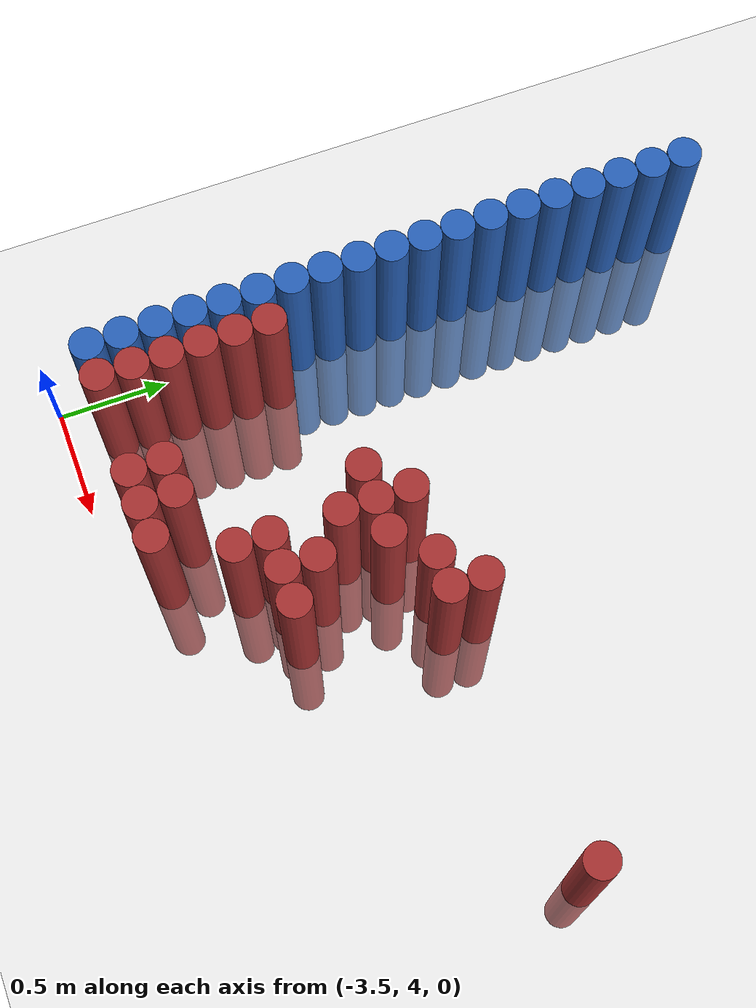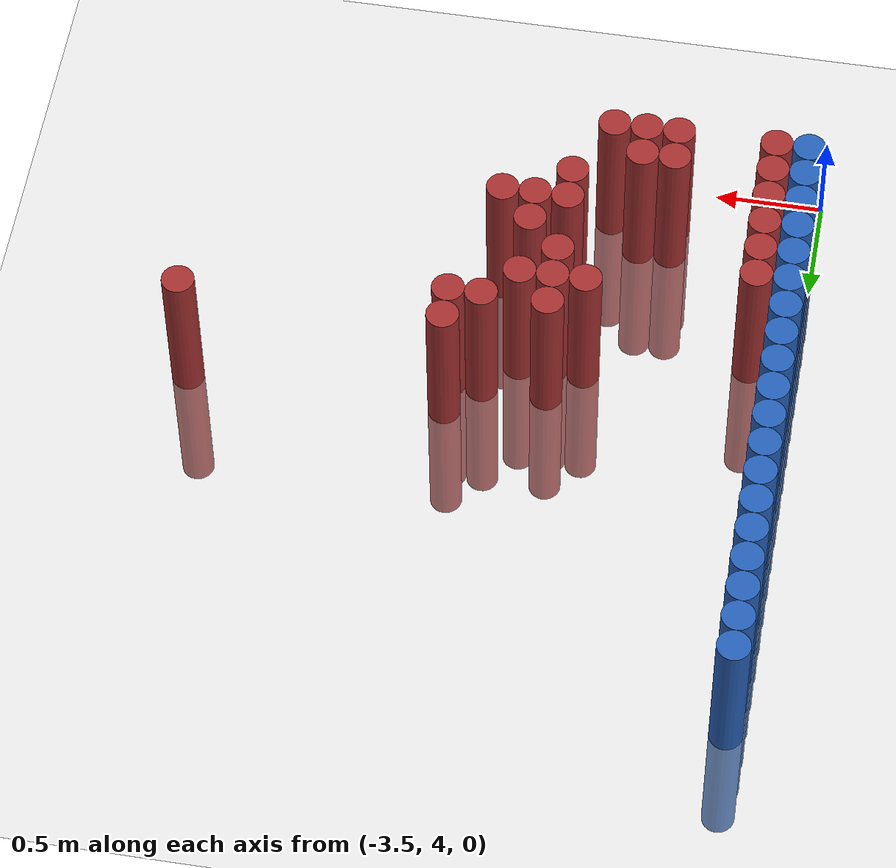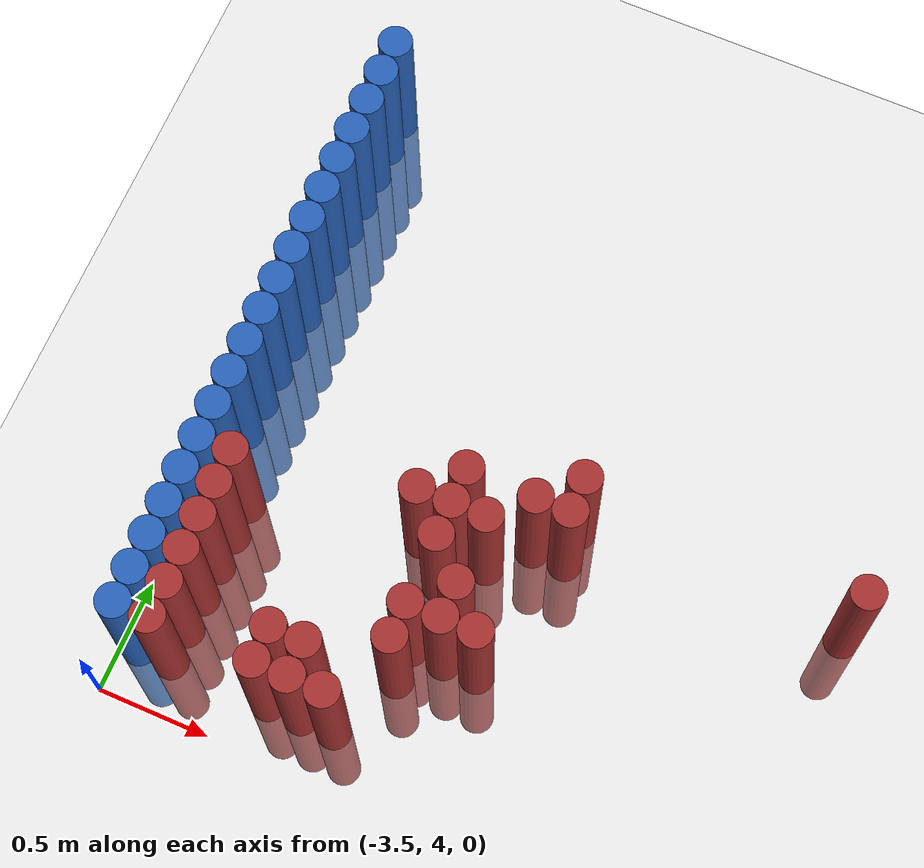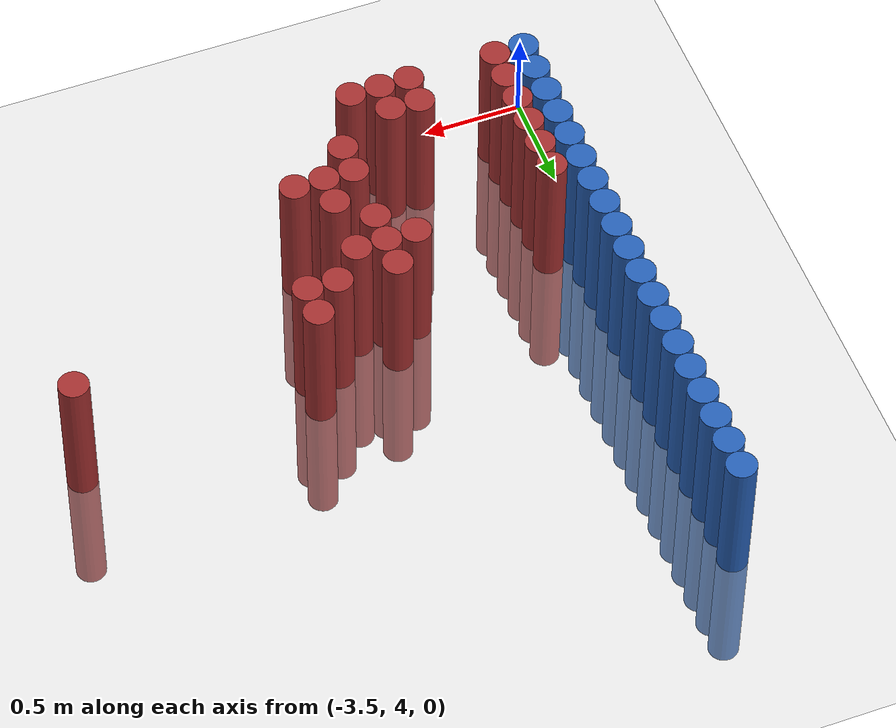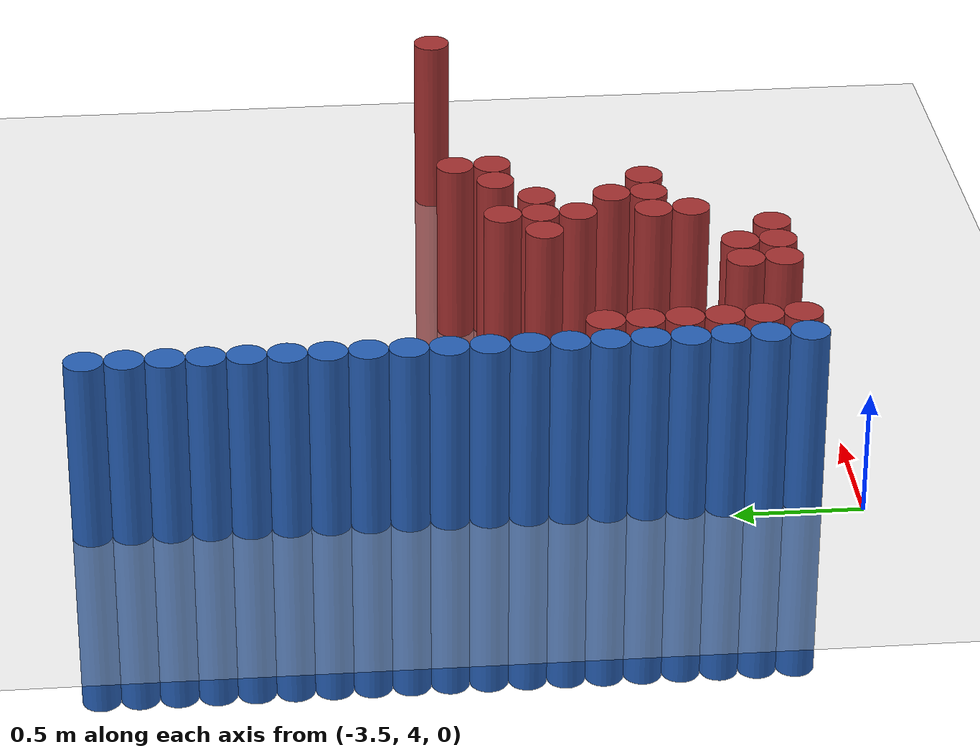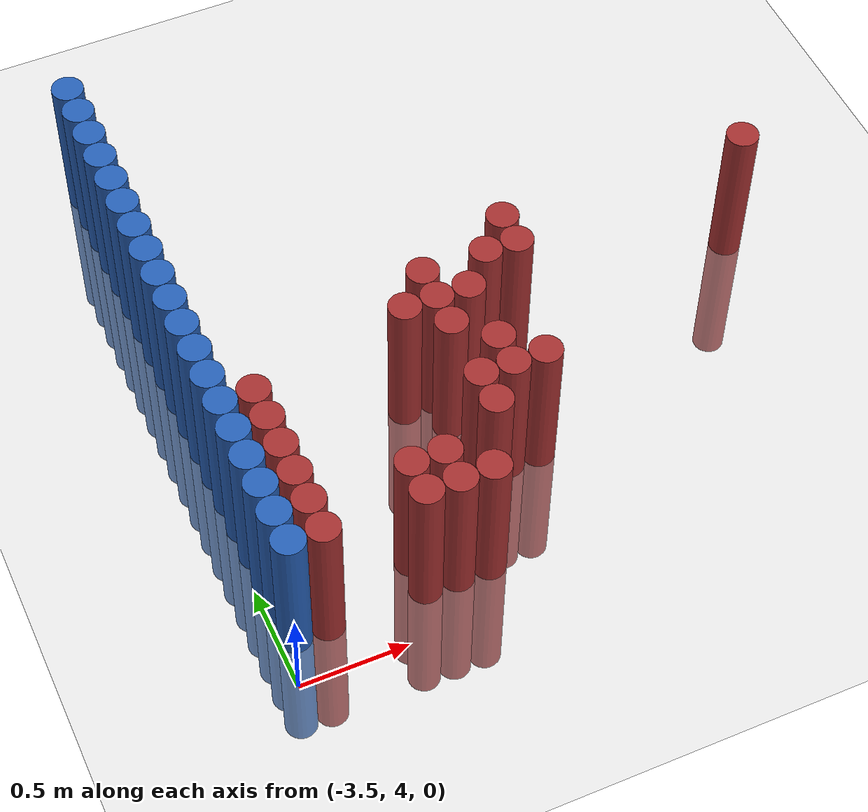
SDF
<sdf version="1.6">
 <world name="default">
  <model name="ground_plane">
   <static>1</static>
   <link name="link">
    <collision name="collision">
     <geometry><plane><normal>0 0 1</normal><size>100 100</size></plane></geometry>
     <surface><friction><ode><mu>100</mu><mu2>50</mu2></ode></friction></surface>
    </collision>
    <visual name="visual">
     <cast_shadows>0</cast_shadows>
     <geometry><plane><normal>0 0 1</normal><size>100 100</size></plane></geometry>
     <material>
      <script><uri>file://media/materials/scripts/gazebo.material</uri><name>Gazebo/Grey</name></script>
     </material>
    </visual>
   </link>
  </model>
  <model name="unit_cylinder_171">
   <static>1</static>
   <pose>-3.425000 4.225000 0.000000 0.000000 0.000000 0.000000</pose>
   <link name="link">
    <inertial>
     <mass>1</mass>
     <inertia><ixx>0.145833</ixx><ixy>0</ixy><ixz>0</ixz><iyy>0.145833</iyy><iyz>0</iyz><izz>0.125</izz></inertia>
    </inertial>
    <collision name="collision">
     <geometry><cylinder><radius>0.075000</radius><length>1.5</length></cylinder></geometry>
    </collision>
    <visual name="visual">
     <geometry><cylinder><radius>0.075000</radius><length>1.5</length></cylinder></geometry>
     <material>
      <ambient>0.152000 0.379000 0.720000 1</ambient>
      <diffuse>0.152000 0.379000 0.720000 1</diffuse>
     </material>
     <material>
      <script><name>Gazebo/Grey</name><uri>file://media/materials/scripts/gazebo.material</uri></script>
     </material>
    </visual>
   </link>
  </model>
  <model name="unit_cylinder_173">
   <static>1</static>
   <pose>-3.425000 4.375000 0.000000 0.000000 0.000000 0.000000</pose>
   <link name="link">
    <inertial>
     <mass>1</mass>
     <inertia><ixx>0.145833</ixx><ixy>0</ixy><ixz>0</ixz><iyy>0.145833</iyy><iyz>0</iyz><izz>0.125</izz></inertia>
    </inertial>
    <collision name="collision">
     <geometry><cylinder><radius>0.075000</radius><length>1.5</length></cylinder></geometry>
    </collision>
    <visual name="visual">
     <geometry><cylinder><radius>0.075000</radius><length>1.5</length></cylinder></geometry>
     <material>
      <ambient>0.152000 0.379000 0.720000 1</ambient>
      <diffuse>0.152000 0.379000 0.720000 1</diffuse>
     </material>
     <material>
      <script><name>Gazebo/Grey</name><uri>file://media/materials/scripts/gazebo.material</uri></script>
     </material>
    </visual>
   </link>
  </model>
  <model name="unit_cylinder_175">
   <static>1</static>
   <pose>-3.425000 4.525000 0.000000 0.000000 0.000000 0.000000</pose>
   <link name="link">
    <inertial>
     <mass>1</mass>
     <inertia><ixx>0.145833</ixx><ixy>0</ixy><ixz>0</ixz><iyy>0.145833</iyy><iyz>0</iyz><izz>0.125</izz></inertia>
    </inertial>
    <collision name="collision">
     <geometry><cylinder><radius>0.075000</radius><length>1.5</length></cylinder></geometry>
    </collision>
    <visual name="visual">
     <geometry><cylinder><radius>0.075000</radius><length>1.5</length></cylinder></geometry>
     <material>
      <ambient>0.152000 0.379000 0.720000 1</ambient>
      <diffuse>0.152000 0.379000 0.720000 1</diffuse>
     </material>
     <material>
      <script><name>Gazebo/Grey</name><uri>file://media/materials/scripts/gazebo.material</uri></script>
     </material>
    </visual>
   </link>
  </model>
  <model name="unit_cylinder_177">
   <static>1</static>
   <pose>-3.425000 4.675000 0.000000 0.000000 0.000000 0.000000</pose>
   <link name="link">
    <inertial>
     <mass>1</mass>
     <inertia><ixx>0.145833</ixx><ixy>0</ixy><ixz>0</ixz><iyy>0.145833</iyy><iyz>0</iyz><izz>0.125</izz></inertia>
    </inertial>
    <collision name="collision">
     <geometry><cylinder><radius>0.075000</radius><length>1.5</length></cylinder></geometry>
    </collision>
    <visual name="visual">
     <geometry><cylinder><radius>0.075000</radius><length>1.5</length></cylinder></geometry>
     <material>
      <ambient>0.152000 0.379000 0.720000 1</ambient>
      <diffuse>0.152000 0.379000 0.720000 1</diffuse>
     </material>
     <material>
      <script><name>Gazebo/Grey</name><uri>file://media/materials/scripts/gazebo.material</uri></script>
     </material>
    </visual>
   </link>
  </model>
  <model name="unit_cylinder_179">
   <static>1</static>
   <pose>-3.425000 4.825000 0.000000 0.000000 0.000000 0.000000</pose>
   <link name="link">
    <inertial>
     <mass>1</mass>
     <inertia><ixx>0.145833</ixx><ixy>0</ixy><ixz>0</ixz><iyy>0.145833</iyy><iyz>0</iyz><izz>0.125</izz></inertia>
    </inertial>
    <collision name="collision">
     <geometry><cylinder><radius>0.075000</radius><length>1.5</length></cylinder></geometry>
    </collision>
    <visual name="visual">
     <geometry><cylinder><radius>0.075000</radius><length>1.5</length></cylinder></geometry>
     <material>
      <ambient>0.152000 0.379000 0.720000 1</ambient>
      <diffuse>0.152000 0.379000 0.720000 1</diffuse>
     </material>
     <material>
      <script><name>Gazebo/Grey</name><uri>file://media/materials/scripts/gazebo.material</uri></script>
     </material>
    </visual>
   </link>
  </model>
  <model name="unit_cylinder_181">
   <static>1</static>
   <pose>-3.425000 4.975000 0.000000 0.000000 0.000000 0.000000</pose>
   <link name="link">
    <inertial>
     <mass>1</mass>
     <inertia><ixx>0.145833</ixx><ixy>0</ixy><ixz>0</ixz><iyy>0.145833</iyy><iyz>0</iyz><izz>0.125</izz></inertia>
    </inertial>
    <collision name="collision">
     <geometry><cylinder><radius>0.075000</radius><length>1.5</length></cylinder></geometry>
    </collision>
    <visual name="visual">
     <geometry><cylinder><radius>0.075000</radius><length>1.5</length></cylinder></geometry>
     <material>
      <ambient>0.152000 0.379000 0.720000 1</ambient>
      <diffuse>0.152000 0.379000 0.720000 1</diffuse>
     </material>
     <material>
      <script><name>Gazebo/Grey</name><uri>file://media/materials/scripts/gazebo.material</uri></script>
     </material>
    </visual>
   </link>
  </model>
  <model name="unit_cylinder_183">
   <static>1</static>
   <pose>-3.425000 5.125000 0.000000 0.000000 0.000000 0.000000</pose>
   <link name="link">
    <inertial>
     <mass>1</mass>
     <inertia><ixx>0.145833</ixx><ixy>0</ixy><ixz>0</ixz><iyy>0.145833</iyy><iyz>0</iyz><izz>0.125</izz></inertia>
    </inertial>
    <collision name="collision">
     <geometry><cylinder><radius>0.075000</radius><length>1.5</length></cylinder></geometry>
    </collision>
    <visual name="visual">
     <geometry><cylinder><radius>0.075000</radius><length>1.5</length></cylinder></geometry>
     <material>
      <ambient>0.152000 0.379000 0.720000 1</ambient>
      <diffuse>0.152000 0.379000 0.720000 1</diffuse>
     </material>
     <material>
      <script><name>Gazebo/Grey</name><uri>file://media/materials/scripts/gazebo.material</uri></script>
     </material>
    </visual>
   </link>
  </model>
  <model name="unit_cylinder_185">
   <static>1</static>
   <pose>-3.425000 5.275000 0.000000 0.000000 0.000000 0.000000</pose>
   <link name="link">
    <inertial>
     <mass>1</mass>
     <inertia><ixx>0.145833</ixx><ixy>0</ixy><ixz>0</ixz><iyy>0.145833</iyy><iyz>0</iyz><izz>0.125</izz></inertia>
    </inertial>
    <collision name="collision">
     <geometry><cylinder><radius>0.075000</radius><length>1.5</length></cylinder></geometry>
    </collision>
    <visual name="visual">
     <geometry><cylinder><radius>0.075000</radius><length>1.5</length></cylinder></geometry>
     <material>
      <ambient>0.152000 0.379000 0.720000 1</ambient>
      <diffuse>0.152000 0.379000 0.720000 1</diffuse>
     </material>
     <material>
      <script><name>Gazebo/Grey</name><uri>file://media/materials/scripts/gazebo.material</uri></script>
     </material>
    </visual>
   </link>
  </model>
  <model name="unit_cylinder_187">
   <static>1</static>
   <pose>-3.425000 5.425000 0.000000 0.000000 0.000000 0.000000</pose>
   <link name="link">
    <inertial>
     <mass>1</mass>
     <inertia><ixx>0.145833</ixx><ixy>0</ixy><ixz>0</ixz><iyy>0.145833</iyy><iyz>0</iyz><izz>0.125</izz></inertia>
    </inertial>
    <collision name="collision">
     <geometry><cylinder><radius>0.075000</radius><length>1.5</length></cylinder></geometry>
    </collision>
    <visual name="visual">
     <geometry><cylinder><radius>0.075000</radius><length>1.5</length></cylinder></geometry>
     <material>
      <ambient>0.152000 0.379000 0.720000 1</ambient>
      <diffuse>0.152000 0.379000 0.720000 1</diffuse>
     </material>
     <material>
      <script><name>Gazebo/Grey</name><uri>file://media/materials/scripts/gazebo.material</uri></script>
     </material>
    </visual>
   </link>
  </model>
  <model name="unit_cylinder_189">
   <static>1</static>
   <pose>-3.425000 5.575000 0.000000 0.000000 0.000000 0.000000</pose>
   <link name="link">
    <inertial>
     <mass>1</mass>
     <inertia><ixx>0.145833</ixx><ixy>0</ixy><ixz>0</ixz><iyy>0.145833</iyy><iyz>0</iyz><izz>0.125</izz></inertia>
    </inertial>
    <collision name="collision">
     <geometry><cylinder><radius>0.075000</radius><length>1.5</length></cylinder></geometry>
    </collision>
    <visual name="visual">
     <geometry><cylinder><radius>0.075000</radius><length>1.5</length></cylinder></geometry>
     <material>
      <ambient>0.152000 0.379000 0.720000 1</ambient>
      <diffuse>0.152000 0.379000 0.720000 1</diffuse>
     </material>
     <material>
      <script><name>Gazebo/Grey</name><uri>file://media/materials/scripts/gazebo.material</uri></script>
     </material>
    </visual>
   </link>
  </model>
  <model name="unit_cylinder_191">
   <static>1</static>
   <pose>-3.425000 5.725000 0.000000 0.000000 0.000000 0.000000</pose>
   <link name="link">
    <inertial>
     <mass>1</mass>
     <inertia><ixx>0.145833</ixx><ixy>0</ixy><ixz>0</ixz><iyy>0.145833</iyy><iyz>0</iyz><izz>0.125</izz></inertia>
    </inertial>
    <collision name="collision">
     <geometry><cylinder><radius>0.075000</radius><length>1.5</length></cylinder></geometry>
    </collision>
    <visual name="visual">
     <geometry><cylinder><radius>0.075000</radius><length>1.5</length></cylinder></geometry>
     <material>
      <ambient>0.152000 0.379000 0.720000 1</ambient>
      <diffuse>0.152000 0.379000 0.720000 1</diffuse>
     </material>
     <material>
      <script><name>Gazebo/Grey</name><uri>file://media/materials/scripts/gazebo.material</uri></script>
     </material>
    </visual>
   </link>
  </model>
  <model name="unit_cylinder_193">
   <static>1</static>
   <pose>-3.425000 5.875000 0.000000 0.000000 0.000000 0.000000</pose>
   <link name="link">
    <inertial>
     <mass>1</mass>
     <inertia><ixx>0.145833</ixx><ixy>0</ixy><ixz>0</ixz><iyy>0.145833</iyy><iyz>0</iyz><izz>0.125</izz></inertia>
    </inertial>
    <collision name="collision">
     <geometry><cylinder><radius>0.075000</radius><length>1.5</length></cylinder></geometry>
    </collision>
    <visual name="visual">
     <geometry><cylinder><radius>0.075000</radius><length>1.5</length></cylinder></geometry>
     <material>
      <ambient>0.152000 0.379000 0.720000 1</ambient>
      <diffuse>0.152000 0.379000 0.720000 1</diffuse>
     </material>
     <material>
      <script><name>Gazebo/Grey</name><uri>file://media/materials/scripts/gazebo.material</uri></script>
     </material>
    </visual>
   </link>
  </model>
  <model name="unit_cylinder_195">
   <static>1</static>
   <pose>-3.425000 6.025000 0.000000 0.000000 0.000000 0.000000</pose>
   <link name="link">
    <inertial>
     <mass>1</mass>
     <inertia><ixx>0.145833</ixx><ixy>0</ixy><ixz>0</ixz><iyy>0.145833</iyy><iyz>0</iyz><izz>0.125</izz></inertia>
    </inertial>
    <collision name="collision">
     <geometry><cylinder><radius>0.075000</radius><length>1.5</length></cylinder></geometry>
    </collision>
    <visual name="visual">
     <geometry><cylinder><radius>0.075000</radius><length>1.5</length></cylinder></geometry>
     <material>
      <ambient>0.152000 0.379000 0.720000 1</ambient>
      <diffuse>0.152000 0.379000 0.720000 1</diffuse>
     </material>
     <material>
      <script><name>Gazebo/Grey</name><uri>file://media/materials/scripts/gazebo.material</uri></script>
     </material>
    </visual>
   </link>
  </model>
  <model name="unit_cylinder_197">
   <static>1</static>
   <pose>-3.425000 6.175000 0.000000 0.000000 0.000000 0.000000</pose>
   <link name="link">
    <inertial>
     <mass>1</mass>
     <inertia><ixx>0.145833</ixx><ixy>0</ixy><ixz>0</ixz><iyy>0.145833</iyy><iyz>0</iyz><izz>0.125</izz></inertia>
    </inertial>
    <collision name="collision">
     <geometry><cylinder><radius>0.075000</radius><length>1.5</length></cylinder></geometry>
    </collision>
    <visual name="visual">
     <geometry><cylinder><radius>0.075000</radius><length>1.5</length></cylinder></geometry>
     <material>
      <ambient>0.152000 0.379000 0.720000 1</ambient>
      <diffuse>0.152000 0.379000 0.720000 1</diffuse>
     </material>
     <material>
      <script><name>Gazebo/Grey</name><uri>file://media/materials/scripts/gazebo.material</uri></script>
     </material>
    </visual>
   </link>
  </model>
  <model name="unit_cylinder_199">
   <static>1</static>
   <pose>-3.425000 6.325000 0.000000 0.000000 0.000000 0.000000</pose>
   <link name="link">
    <inertial>
     <mass>1</mass>
     <inertia><ixx>0.145833</ixx><ixy>0</ixy><ixz>0</ixz><iyy>0.145833</iyy><iyz>0</iyz><izz>0.125</izz></inertia>
    </inertial>
    <collision name="collision">
     <geometry><cylinder><radius>0.075000</radius><length>1.5</length></cylinder></geometry>
    </collision>
    <visual name="visual">
     <geometry><cylinder><radius>0.075000</radius><length>1.5</length></cylinder></geometry>
     <material>
      <ambient>0.152000 0.379000 0.720000 1</ambient>
      <diffuse>0.152000 0.379000 0.720000 1</diffuse>
     </material>
     <material>
      <script><name>Gazebo/Grey</name><uri>file://media/materials/scripts/gazebo.material</uri></script>
     </material>
    </visual>
   </link>
  </model>
  <model name="unit_cylinder_201">
   <static>1</static>
   <pose>-3.425000 6.475000 0.000000 0.000000 0.000000 0.000000</pose>
   <link name="link">
    <inertial>
     <mass>1</mass>
     <inertia><ixx>0.145833</ixx><ixy>0</ixy><ixz>0</ixz><iyy>0.145833</iyy><iyz>0</iyz><izz>0.125</izz></inertia>
    </inertial>
    <collision name="collision">
     <geometry><cylinder><radius>0.075000</radius><length>1.5</length></cylinder></geometry>
    </collision>
    <visual name="visual">
     <geometry><cylinder><radius>0.075000</radius><length>1.5</length></cylinder></geometry>
     <material>
      <ambient>0.152000 0.379000 0.720000 1</ambient>
      <diffuse>0.152000 0.379000 0.720000 1</diffuse>
     </material>
     <material>
      <script><name>Gazebo/Grey</name><uri>file://media/materials/scripts/gazebo.material</uri></script>
     </material>
    </visual>
   </link>
  </model>
  <model name="unit_cylinder_203">
   <static>1</static>
   <pose>-3.425000 6.625000 0.000000 0.000000 0.000000 0.000000</pose>
   <link name="link">
    <inertial>
     <mass>1</mass>
     <inertia><ixx>0.145833</ixx><ixy>0</ixy><ixz>0</ixz><iyy>0.145833</iyy><iyz>0</iyz><izz>0.125</izz></inertia>
    </inertial>
    <collision name="collision">
     <geometry><cylinder><radius>0.075000</radius><length>1.5</length></cylinder></geometry>
    </collision>
    <visual name="visual">
     <geometry><cylinder><radius>0.075000</radius><length>1.5</length></cylinder></geometry>
     <material>
      <ambient>0.152000 0.379000 0.720000 1</ambient>
      <diffuse>0.152000 0.379000 0.720000 1</diffuse>
     </material>
     <material>
      <script><name>Gazebo/Grey</name><uri>file://media/materials/scripts/gazebo.material</uri></script>
     </material>
    </visual>
   </link>
  </model>
  <model name="unit_cylinder_205">
   <static>1</static>
   <pose>-3.425000 6.775000 0.000000 0.000000 0.000000 0.000000</pose>
   <link name="link">
    <inertial>
     <mass>1</mass>
     <inertia><ixx>0.145833</ixx><ixy>0</ixy><ixz>0</ixz><iyy>0.145833</iyy><iyz>0</iyz><izz>0.125</izz></inertia>
    </inertial>
    <collision name="collision">
     <geometry><cylinder><radius>0.075000</radius><length>1.5</length></cylinder></geometry>
    </collision>
    <visual name="visual">
     <geometry><cylinder><radius>0.075000</radius><length>1.5</length></cylinder></geometry>
     <material>
      <ambient>0.152000 0.379000 0.720000 1</ambient>
      <diffuse>0.152000 0.379000 0.720000 1</diffuse>
     </material>
     <material>
      <script><name>Gazebo/Grey</name><uri>file://media/materials/scripts/gazebo.material</uri></script>
     </material>
    </visual>
   </link>
  </model>
  <model name="unit_cylinder_207">
   <static>1</static>
   <pose>-3.425000 6.925000 0.000000 0.000000 0.000000 0.000000</pose>
   <link name="link">
    <inertial>
     <mass>1</mass>
     <inertia><ixx>0.145833</ixx><ixy>0</ixy><ixz>0</ixz><iyy>0.145833</iyy><iyz>0</iyz><izz>0.125</izz></inertia>
    </inertial>
    <collision name="collision">
     <geometry><cylinder><radius>0.075000</radius><length>1.5</length></cylinder></geometry>
    </collision>
    <visual name="visual">
     <geometry><cylinder><radius>0.075000</radius><length>1.5</length></cylinder></geometry>
     <material>
      <ambient>0.152000 0.379000 0.720000 1</ambient>
      <diffuse>0.152000 0.379000 0.720000 1</diffuse>
     </material>
     <material>
      <script><name>Gazebo/Grey</name><uri>file://media/materials/scripts/gazebo.material</uri></script>
     </material>
    </visual>
   </link>
  </model>
  <model name="unit_cylinder_249">
   <static>1</static>
   <pose>-3.425000 4.225000 0.000000 0.000000 0.000000 0.000000</pose>
   <link name="link">
    <inertial>
     <mass>1</mass>
     <inertia><ixx>0.145833</ixx><ixy>0</ixy><ixz>0</ixz><iyy>0.145833</iyy><iyz>0</iyz><izz>0.125</izz></inertia>
    </inertial>
    <collision name="collision">
     <geometry><cylinder><radius>0.075000</radius><length>1.5</length></cylinder></geometry>
    </collision>
    <visual name="visual">
     <geometry><cylinder><radius>0.075000</radius><length>1.5</length></cylinder></geometry>
     <material>
      <ambient>0.152000 0.379000 0.720000 1</ambient>
      <diffuse>0.152000 0.379000 0.720000 1</diffuse>
     </material>
     <material>
      <script><name>Gazebo/Grey</name><uri>file://media/materials/scripts/gazebo.material</uri></script>
     </material>
    </visual>
   </link>
  </model>
  <model name="unit_cylinder_250">
   <static>1</static>
   <pose>-3.425000 4.375000 0.000000 0.000000 0.000000 0.000000</pose>
   <link name="link">
    <inertial>
     <mass>1</mass>
     <inertia><ixx>0.145833</ixx><ixy>0</ixy><ixz>0</ixz><iyy>0.145833</iyy><iyz>0</iyz><izz>0.125</izz></inertia>
    </inertial>
    <collision name="collision">
     <geometry><cylinder><radius>0.075000</radius><length>1.5</length></cylinder></geometry>
    </collision>
    <visual name="visual">
     <geometry><cylinder><radius>0.075000</radius><length>1.5</length></cylinder></geometry>
     <material>
      <ambient>0.152000 0.379000 0.720000 1</ambient>
      <diffuse>0.152000 0.379000 0.720000 1</diffuse>
     </material>
     <material>
      <script><name>Gazebo/Grey</name><uri>file://media/materials/scripts/gazebo.material</uri></script>
     </material>
    </visual>
   </link>
  </model>
  <model name="unit_cylinder_251">
   <static>1</static>
   <pose>-3.425000 4.525000 0.000000 0.000000 0.000000 0.000000</pose>
   <link name="link">
    <inertial>
     <mass>1</mass>
     <inertia><ixx>0.145833</ixx><ixy>0</ixy><ixz>0</ixz><iyy>0.145833</iyy><iyz>0</iyz><izz>0.125</izz></inertia>
    </inertial>
    <collision name="collision">
     <geometry><cylinder><radius>0.075000</radius><length>1.5</length></cylinder></geometry>
    </collision>
    <visual name="visual">
     <geometry><cylinder><radius>0.075000</radius><length>1.5</length></cylinder></geometry>
     <material>
      <ambient>0.152000 0.379000 0.720000 1</ambient>
      <diffuse>0.152000 0.379000 0.720000 1</diffuse>
     </material>
     <material>
      <script><name>Gazebo/Grey</name><uri>file://media/materials/scripts/gazebo.material</uri></script>
     </material>
    </visual>
   </link>
  </model>
  <model name="unit_cylinder_252">
   <static>1</static>
   <pose>-3.425000 4.675000 0.000000 0.000000 0.000000 0.000000</pose>
   <link name="link">
    <inertial>
     <mass>1</mass>
     <inertia><ixx>0.145833</ixx><ixy>0</ixy><ixz>0</ixz><iyy>0.145833</iyy><iyz>0</iyz><izz>0.125</izz></inertia>
    </inertial>
    <collision name="collision">
     <geometry><cylinder><radius>0.075000</radius><length>1.5</length></cylinder></geometry>
    </collision>
    <visual name="visual">
     <geometry><cylinder><radius>0.075000</radius><length>1.5</length></cylinder></geometry>
     <material>
      <ambient>0.152000 0.379000 0.720000 1</ambient>
      <diffuse>0.152000 0.379000 0.720000 1</diffuse>
     </material>
     <material>
      <script><name>Gazebo/Grey</name><uri>file://media/materials/scripts/gazebo.material</uri></script>
     </material>
    </visual>
   </link>
  </model>
  <model name="unit_cylinder_253">
   <static>1</static>
   <pose>-3.425000 4.825000 0.000000 0.000000 0.000000 0.000000</pose>
   <link name="link">
    <inertial>
     <mass>1</mass>
     <inertia><ixx>0.145833</ixx><ixy>0</ixy><ixz>0</ixz><iyy>0.145833</iyy><iyz>0</iyz><izz>0.125</izz></inertia>
    </inertial>
    <collision name="collision">
     <geometry><cylinder><radius>0.075000</radius><length>1.5</length></cylinder></geometry>
    </collision>
    <visual name="visual">
     <geometry><cylinder><radius>0.075000</radius><length>1.5</length></cylinder></geometry>
     <material>
      <ambient>0.152000 0.379000 0.720000 1</ambient>
      <diffuse>0.152000 0.379000 0.720000 1</diffuse>
     </material>
     <material>
      <script><name>Gazebo/Grey</name><uri>file://media/materials/scripts/gazebo.material</uri></script>
     </material>
    </visual>
   </link>
  </model>
  <model name="unit_cylinder_254">
   <static>1</static>
   <pose>-3.425000 4.975000 0.000000 0.000000 0.000000 0.000000</pose>
   <link name="link">
    <inertial>
     <mass>1</mass>
     <inertia><ixx>0.145833</ixx><ixy>0</ixy><ixz>0</ixz><iyy>0.145833</iyy><iyz>0</iyz><izz>0.125</izz></inertia>
    </inertial>
    <collision name="collision">
     <geometry><cylinder><radius>0.075000</radius><length>1.5</length></cylinder></geometry>
    </collision>
    <visual name="visual">
     <geometry><cylinder><radius>0.075000</radius><length>1.5</length></cylinder></geometry>
     <material>
      <ambient>0.152000 0.379000 0.720000 1</ambient>
      <diffuse>0.152000 0.379000 0.720000 1</diffuse>
     </material>
     <material>
      <script><name>Gazebo/Grey</name><uri>file://media/materials/scripts/gazebo.material</uri></script>
     </material>
    </visual>
   </link>
  </model>
  <model name="unit_cylinder_255">
   <static>1</static>
   <pose>-3.425000 5.125000 0.000000 0.000000 0.000000 0.000000</pose>
   <link name="link">
    <inertial>
     <mass>1</mass>
     <inertia><ixx>0.145833</ixx><ixy>0</ixy><ixz>0</ixz><iyy>0.145833</iyy><iyz>0</iyz><izz>0.125</izz></inertia>
    </inertial>
    <collision name="collision">
     <geometry><cylinder><radius>0.075000</radius><length>1.5</length></cylinder></geometry>
    </collision>
    <visual name="visual">
     <geometry><cylinder><radius>0.075000</radius><length>1.5</length></cylinder></geometry>
     <material>
      <ambient>0.152000 0.379000 0.720000 1</ambient>
      <diffuse>0.152000 0.379000 0.720000 1</diffuse>
     </material>
     <material>
      <script><name>Gazebo/Grey</name><uri>file://media/materials/scripts/gazebo.material</uri></script>
     </material>
    </visual>
   </link>
  </model>
  <model name="unit_cylinder_256">
   <static>1</static>
   <pose>-3.425000 5.275000 0.000000 0.000000 0.000000 0.000000</pose>
   <link name="link">
    <inertial>
     <mass>1</mass>
     <inertia><ixx>0.145833</ixx><ixy>0</ixy><ixz>0</ixz><iyy>0.145833</iyy><iyz>0</iyz><izz>0.125</izz></inertia>
    </inertial>
    <collision name="collision">
     <geometry><cylinder><radius>0.075000</radius><length>1.5</length></cylinder></geometry>
    </collision>
    <visual name="visual">
     <geometry><cylinder><radius>0.075000</radius><length>1.5</length></cylinder></geometry>
     <material>
      <ambient>0.152000 0.379000 0.720000 1</ambient>
      <diffuse>0.152000 0.379000 0.720000 1</diffuse>
     </material>
     <material>
      <script><name>Gazebo/Grey</name><uri>file://media/materials/scripts/gazebo.material</uri></script>
     </material>
    </visual>
   </link>
  </model>
  <model name="unit_cylinder_257">
   <static>1</static>
   <pose>-3.425000 5.425000 0.000000 0.000000 0.000000 0.000000</pose>
   <link name="link">
    <inertial>
     <mass>1</mass>
     <inertia><ixx>0.145833</ixx><ixy>0</ixy><ixz>0</ixz><iyy>0.145833</iyy><iyz>0</iyz><izz>0.125</izz></inertia>
    </inertial>
    <collision name="collision">
     <geometry><cylinder><radius>0.075000</radius><length>1.5</length></cylinder></geometry>
    </collision>
    <visual name="visual">
     <geometry><cylinder><radius>0.075000</radius><length>1.5</length></cylinder></geometry>
     <material>
      <ambient>0.152000 0.379000 0.720000 1</ambient>
      <diffuse>0.152000 0.379000 0.720000 1</diffuse>
     </material>
     <material>
      <script><name>Gazebo/Grey</name><uri>file://media/materials/scripts/gazebo.material</uri></script>
     </material>
    </visual>
   </link>
  </model>
  <model name="unit_cylinder_270">
   <static>1</static>
   <pose>-3.275000 4.225000 0.000000 0.000000 0.000000 0.000000</pose>
   <link name="link">
    <inertial>
     <mass>1</mass>
     <inertia><ixx>0.145833</ixx><ixy>0</ixy><ixz>0</ixz><iyy>0.145833</iyy><iyz>0</iyz><izz>0.125</izz></inertia>
    </inertial>
    <collision name="collision">
     <geometry><cylinder><radius>0.075000</radius><length>1.5</length></cylinder></geometry>
    </collision>
    <visual name="visual">
     <geometry><cylinder><radius>0.075000</radius><length>1.5</length></cylinder></geometry>
     <material>
      <ambient>0.648000 0.192000 0.192000 1</ambient>
      <diffuse>0.648000 0.192000 0.192000 1</diffuse>
     </material>
     <material>
      <script><name>Gazebo/Grey</name><uri>file://media/materials/scripts/gazebo.material</uri></script>
     </material>
    </visual>
   </link>
  </model>
  <model name="unit_cylinder_271">
   <static>1</static>
   <pose>-3.275000 4.375000 0.000000 0.000000 0.000000 0.000000</pose>
   <link name="link">
    <inertial>
     <mass>1</mass>
     <inertia><ixx>0.145833</ixx><ixy>0</ixy><ixz>0</ixz><iyy>0.145833</iyy><iyz>0</iyz><izz>0.125</izz></inertia>
    </inertial>
    <collision name="collision">
     <geometry><cylinder><radius>0.075000</radius><length>1.5</length></cylinder></geometry>
    </collision>
    <visual name="visual">
     <geometry><cylinder><radius>0.075000</radius><length>1.5</length></cylinder></geometry>
     <material>
      <ambient>0.648000 0.192000 0.192000 1</ambient>
      <diffuse>0.648000 0.192000 0.192000 1</diffuse>
     </material>
     <material>
      <script><name>Gazebo/Grey</name><uri>file://media/materials/scripts/gazebo.material</uri></script>
     </material>
    </visual>
   </link>
  </model>
  <model name="unit_cylinder_272">
   <static>1</static>
   <pose>-3.275000 4.525000 0.000000 0.000000 0.000000 0.000000</pose>
   <link name="link">
    <inertial>
     <mass>1</mass>
     <inertia><ixx>0.145833</ixx><ixy>0</ixy><ixz>0</ixz><iyy>0.145833</iyy><iyz>0</iyz><izz>0.125</izz></inertia>
    </inertial>
    <collision name="collision">
     <geometry><cylinder><radius>0.075000</radius><length>1.5</length></cylinder></geometry>
    </collision>
    <visual name="visual">
     <geometry><cylinder><radius>0.075000</radius><length>1.5</length></cylinder></geometry>
     <material>
      <ambient>0.648000 0.192000 0.192000 1</ambient>
      <diffuse>0.648000 0.192000 0.192000 1</diffuse>
     </material>
     <material>
      <script><name>Gazebo/Grey</name><uri>file://media/materials/scripts/gazebo.material</uri></script>
     </material>
    </visual>
   </link>
  </model>
  <model name="unit_cylinder_273">
   <static>1</static>
   <pose>-3.275000 4.675000 0.000000 0.000000 0.000000 0.000000</pose>
   <link name="link">
    <inertial>
     <mass>1</mass>
     <inertia><ixx>0.145833</ixx><ixy>0</ixy><ixz>0</ixz><iyy>0.145833</iyy><iyz>0</iyz><izz>0.125</izz></inertia>
    </inertial>
    <collision name="collision">
     <geometry><cylinder><radius>0.075000</radius><length>1.5</length></cylinder></geometry>
    </collision>
    <visual name="visual">
     <geometry><cylinder><radius>0.075000</radius><length>1.5</length></cylinder></geometry>
     <material>
      <ambient>0.648000 0.192000 0.192000 1</ambient>
      <diffuse>0.648000 0.192000 0.192000 1</diffuse>
     </material>
     <material>
      <script><name>Gazebo/Grey</name><uri>file://media/materials/scripts/gazebo.material</uri></script>
     </material>
    </visual>
   </link>
  </model>
  <model name="unit_cylinder_274">
   <static>1</static>
   <pose>-3.275000 4.825000 0.000000 0.000000 0.000000 0.000000</pose>
   <link name="link">
    <inertial>
     <mass>1</mass>
     <inertia><ixx>0.145833</ixx><ixy>0</ixy><ixz>0</ixz><iyy>0.145833</iyy><iyz>0</iyz><izz>0.125</izz></inertia>
    </inertial>
    <collision name="collision">
     <geometry><cylinder><radius>0.075000</radius><length>1.5</length></cylinder></geometry>
    </collision>
    <visual name="visual">
     <geometry><cylinder><radius>0.075000</radius><length>1.5</length></cylinder></geometry>
     <material>
      <ambient>0.648000 0.192000 0.192000 1</ambient>
      <diffuse>0.648000 0.192000 0.192000 1</diffuse>
     </material>
     <material>
      <script><name>Gazebo/Grey</name><uri>file://media/materials/scripts/gazebo.material</uri></script>
     </material>
    </visual>
   </link>
  </model>
  <model name="unit_cylinder_275">
   <static>1</static>
   <pose>-3.275000 4.975000 0.000000 0.000000 0.000000 0.000000</pose>
   <link name="link">
    <inertial>
     <mass>1</mass>
     <inertia><ixx>0.145833</ixx><ixy>0</ixy><ixz>0</ixz><iyy>0.145833</iyy><iyz>0</iyz><izz>0.125</izz></inertia>
    </inertial>
    <collision name="collision">
     <geometry><cylinder><radius>0.075000</radius><length>1.5</length></cylinder></geometry>
    </collision>
    <visual name="visual">
     <geometry><cylinder><radius>0.075000</radius><length>1.5</length></cylinder></geometry>
     <material>
      <ambient>0.648000 0.192000 0.192000 1</ambient>
      <diffuse>0.648000 0.192000 0.192000 1</diffuse>
     </material>
     <material>
      <script><name>Gazebo/Grey</name><uri>file://media/materials/scripts/gazebo.material</uri></script>
     </material>
    </visual>
   </link>
  </model>
  <model name="unit_cylinder_291">
   <static>1</static>
   <pose>-2.825000 4.225000 0.000000 0.000000 0.000000 0.000000</pose>
   <link name="link">
    <inertial>
     <mass>1</mass>
     <inertia><ixx>0.145833</ixx><ixy>0</ixy><ixz>0</ixz><iyy>0.145833</iyy><iyz>0</iyz><izz>0.125</izz></inertia>
    </inertial>
    <collision name="collision">
     <geometry><cylinder><radius>0.075000</radius><length>1.5</length></cylinder></geometry>
    </collision>
    <visual name="visual">
     <geometry><cylinder><radius>0.075000</radius><length>1.5</length></cylinder></geometry>
     <material>
      <ambient>0.648000 0.192000 0.192000 1</ambient>
      <diffuse>0.648000 0.192000 0.192000 1</diffuse>
     </material>
     <material>
      <script><name>Gazebo/Grey</name><uri>file://media/materials/scripts/gazebo.material</uri></script>
     </material>
    </visual>
   </link>
  </model>
  <model name="unit_cylinder_292">
   <static>1</static>
   <pose>-2.825000 4.375000 0.000000 0.000000 0.000000 0.000000</pose>
   <link name="link">
    <inertial>
     <mass>1</mass>
     <inertia><ixx>0.145833</ixx><ixy>0</ixy><ixz>0</ixz><iyy>0.145833</iyy><iyz>0</iyz><izz>0.125</izz></inertia>
    </inertial>
    <collision name="collision">
     <geometry><cylinder><radius>0.075000</radius><length>1.5</length></cylinder></geometry>
    </collision>
    <visual name="visual">
     <geometry><cylinder><radius>0.075000</radius><length>1.5</length></cylinder></geometry>
     <material>
      <ambient>0.648000 0.192000 0.192000 1</ambient>
      <diffuse>0.648000 0.192000 0.192000 1</diffuse>
     </material>
     <material>
      <script><name>Gazebo/Grey</name><uri>file://media/materials/scripts/gazebo.material</uri></script>
     </material>
    </visual>
   </link>
  </model>
  <model name="unit_cylinder_297">
   <static>1</static>
   <pose>-2.675000 4.225000 0.000000 0.000000 0.000000 0.000000</pose>
   <link name="link">
    <inertial>
     <mass>1</mass>
     <inertia><ixx>0.145833</ixx><ixy>0</ixy><ixz>0</ixz><iyy>0.145833</iyy><iyz>0</iyz><izz>0.125</izz></inertia>
    </inertial>
    <collision name="collision">
     <geometry><cylinder><radius>0.075000</radius><length>1.5</length></cylinder></geometry>
    </collision>
    <visual name="visual">
     <geometry><cylinder><radius>0.075000</radius><length>1.5</length></cylinder></geometry>
     <material>
      <ambient>0.648000 0.192000 0.192000 1</ambient>
      <diffuse>0.648000 0.192000 0.192000 1</diffuse>
     </material>
     <material>
      <script><name>Gazebo/Grey</name><uri>file://media/materials/scripts/gazebo.material</uri></script>
     </material>
    </visual>
   </link>
  </model>
  <model name="unit_cylinder_298">
   <static>1</static>
   <pose>-2.675000 4.375000 0.000000 0.000000 0.000000 0.000000</pose>
   <link name="link">
    <inertial>
     <mass>1</mass>
     <inertia><ixx>0.145833</ixx><ixy>0</ixy><ixz>0</ixz><iyy>0.145833</iyy><iyz>0</iyz><izz>0.125</izz></inertia>
    </inertial>
    <collision name="collision">
     <geometry><cylinder><radius>0.075000</radius><length>1.5</length></cylinder></geometry>
    </collision>
    <visual name="visual">
     <geometry><cylinder><radius>0.075000</radius><length>1.5</length></cylinder></geometry>
     <material>
      <ambient>0.648000 0.192000 0.192000 1</ambient>
      <diffuse>0.648000 0.192000 0.192000 1</diffuse>
     </material>
     <material>
      <script><name>Gazebo/Grey</name><uri>file://media/materials/scripts/gazebo.material</uri></script>
     </material>
    </visual>
   </link>
  </model>
  <model name="unit_cylinder_307">
   <static>1</static>
   <pose>-2.525000 4.225000 0.000000 0.000000 0.000000 0.000000</pose>
   <link name="link">
    <inertial>
     <mass>1</mass>
     <inertia><ixx>0.145833</ixx><ixy>0</ixy><ixz>0</ixz><iyy>0.145833</iyy><iyz>0</iyz><izz>0.125</izz></inertia>
    </inertial>
    <collision name="collision">
     <geometry><cylinder><radius>0.075000</radius><length>1.5</length></cylinder></geometry>
    </collision>
    <visual name="visual">
     <geometry><cylinder><radius>0.075000</radius><length>1.5</length></cylinder></geometry>
     <material>
      <ambient>0.648000 0.192000 0.192000 1</ambient>
      <diffuse>0.648000 0.192000 0.192000 1</diffuse>
     </material>
     <material>
      <script><name>Gazebo/Grey</name><uri>file://media/materials/scripts/gazebo.material</uri></script>
     </material>
    </visual>
   </link>
  </model>
  <model name="unit_cylinder_308">
   <static>1</static>
   <pose>-2.525000 5.125000 0.000000 0.000000 0.000000 0.000000</pose>
   <link name="link">
    <inertial>
     <mass>1</mass>
     <inertia><ixx>0.145833</ixx><ixy>0</ixy><ixz>0</ixz><iyy>0.145833</iyy><iyz>0</iyz><izz>0.125</izz></inertia>
    </inertial>
    <collision name="collision">
     <geometry><cylinder><radius>0.075000</radius><length>1.5</length></cylinder></geometry>
    </collision>
    <visual name="visual">
     <geometry><cylinder><radius>0.075000</radius><length>1.5</length></cylinder></geometry>
     <material>
      <ambient>0.648000 0.192000 0.192000 1</ambient>
      <diffuse>0.648000 0.192000 0.192000 1</diffuse>
     </material>
     <material>
      <script><name>Gazebo/Grey</name><uri>file://media/materials/scripts/gazebo.material</uri></script>
     </material>
    </visual>
   </link>
  </model>
  <model name="unit_cylinder_315">
   <static>1</static>
   <pose>-2.375000 4.525000 0.000000 0.000000 0.000000 0.000000</pose>
   <link name="link">
    <inertial>
     <mass>1</mass>
     <inertia><ixx>0.145833</ixx><ixy>0</ixy><ixz>0</ixz><iyy>0.145833</iyy><iyz>0</iyz><izz>0.125</izz></inertia>
    </inertial>
    <collision name="collision">
     <geometry><cylinder><radius>0.075000</radius><length>1.5</length></cylinder></geometry>
    </collision>
    <visual name="visual">
     <geometry><cylinder><radius>0.075000</radius><length>1.5</length></cylinder></geometry>
     <material>
      <ambient>0.648000 0.192000 0.192000 1</ambient>
      <diffuse>0.648000 0.192000 0.192000 1</diffuse>
     </material>
     <material>
      <script><name>Gazebo/Grey</name><uri>file://media/materials/scripts/gazebo.material</uri></script>
     </material>
    </visual>
   </link>
  </model>
  <model name="unit_cylinder_316">
   <static>1</static>
   <pose>-2.375000 4.675000 0.000000 0.000000 0.000000 0.000000</pose>
   <link name="link">
    <inertial>
     <mass>1</mass>
     <inertia><ixx>0.145833</ixx><ixy>0</ixy><ixz>0</ixz><iyy>0.145833</iyy><iyz>0</iyz><izz>0.125</izz></inertia>
    </inertial>
    <collision name="collision">
     <geometry><cylinder><radius>0.075000</radius><length>1.5</length></cylinder></geometry>
    </collision>
    <visual name="visual">
     <geometry><cylinder><radius>0.075000</radius><length>1.5</length></cylinder></geometry>
     <material>
      <ambient>0.648000 0.192000 0.192000 1</ambient>
      <diffuse>0.648000 0.192000 0.192000 1</diffuse>
     </material>
     <material>
      <script><name>Gazebo/Grey</name><uri>file://media/materials/scripts/gazebo.material</uri></script>
     </material>
    </visual>
   </link>
  </model>
  <model name="unit_cylinder_317">
   <static>1</static>
   <pose>-2.375000 4.975000 0.000000 0.000000 0.000000 0.000000</pose>
   <link name="link">
    <inertial>
     <mass>1</mass>
     <inertia><ixx>0.145833</ixx><ixy>0</ixy><ixz>0</ixz><iyy>0.145833</iyy><iyz>0</iyz><izz>0.125</izz></inertia>
    </inertial>
    <collision name="collision">
     <geometry><cylinder><radius>0.075000</radius><length>1.5</length></cylinder></geometry>
    </collision>
    <visual name="visual">
     <geometry><cylinder><radius>0.075000</radius><length>1.5</length></cylinder></geometry>
     <material>
      <ambient>0.648000 0.192000 0.192000 1</ambient>
      <diffuse>0.648000 0.192000 0.192000 1</diffuse>
     </material>
     <material>
      <script><name>Gazebo/Grey</name><uri>file://media/materials/scripts/gazebo.material</uri></script>
     </material>
    </visual>
   </link>
  </model>
  <model name="unit_cylinder_318">
   <static>1</static>
   <pose>-2.375000 5.125000 0.000000 0.000000 0.000000 0.000000</pose>
   <link name="link">
    <inertial>
     <mass>1</mass>
     <inertia><ixx>0.145833</ixx><ixy>0</ixy><ixz>0</ixz><iyy>0.145833</iyy><iyz>0</iyz><izz>0.125</izz></inertia>
    </inertial>
    <collision name="collision">
     <geometry><cylinder><radius>0.075000</radius><length>1.5</length></cylinder></geometry>
    </collision>
    <visual name="visual">
     <geometry><cylinder><radius>0.075000</radius><length>1.5</length></cylinder></geometry>
     <material>
      <ambient>0.648000 0.192000 0.192000 1</ambient>
      <diffuse>0.648000 0.192000 0.192000 1</diffuse>
     </material>
     <material>
      <script><name>Gazebo/Grey</name><uri>file://media/materials/scripts/gazebo.material</uri></script>
     </material>
    </visual>
   </link>
  </model>
  <model name="unit_cylinder_319">
   <static>1</static>
   <pose>-2.375000 5.275000 0.000000 0.000000 0.000000 0.000000</pose>
   <link name="link">
    <inertial>
     <mass>1</mass>
     <inertia><ixx>0.145833</ixx><ixy>0</ixy><ixz>0</ixz><iyy>0.145833</iyy><iyz>0</iyz><izz>0.125</izz></inertia>
    </inertial>
    <collision name="collision">
     <geometry><cylinder><radius>0.075000</radius><length>1.5</length></cylinder></geometry>
    </collision>
    <visual name="visual">
     <geometry><cylinder><radius>0.075000</radius><length>1.5</length></cylinder></geometry>
     <material>
      <ambient>0.648000 0.192000 0.192000 1</ambient>
      <diffuse>0.648000 0.192000 0.192000 1</diffuse>
     </material>
     <material>
      <script><name>Gazebo/Grey</name><uri>file://media/materials/scripts/gazebo.material</uri></script>
     </material>
    </visual>
   </link>
  </model>
  <model name="unit_cylinder_330">
   <static>1</static>
   <pose>-2.225000 4.675000 0.000000 0.000000 0.000000 0.000000</pose>
   <link name="link">
    <inertial>
     <mass>1</mass>
     <inertia><ixx>0.145833</ixx><ixy>0</ixy><ixz>0</ixz><iyy>0.145833</iyy><iyz>0</iyz><izz>0.125</izz></inertia>
    </inertial>
    <collision name="collision">
     <geometry><cylinder><radius>0.075000</radius><length>1.5</length></cylinder></geometry>
    </collision>
    <visual name="visual">
     <geometry><cylinder><radius>0.075000</radius><length>1.5</length></cylinder></geometry>
     <material>
      <ambient>0.648000 0.192000 0.192000 1</ambient>
      <diffuse>0.648000 0.192000 0.192000 1</diffuse>
     </material>
     <material>
      <script><name>Gazebo/Grey</name><uri>file://media/materials/scripts/gazebo.material</uri></script>
     </material>
    </visual>
   </link>
  </model>
  <model name="unit_cylinder_331">
   <static>1</static>
   <pose>-2.225000 4.825000 0.000000 0.000000 0.000000 0.000000</pose>
   <link name="link">
    <inertial>
     <mass>1</mass>
     <inertia><ixx>0.145833</ixx><ixy>0</ixy><ixz>0</ixz><iyy>0.145833</iyy><iyz>0</iyz><izz>0.125</izz></inertia>
    </inertial>
    <collision name="collision">
     <geometry><cylinder><radius>0.075000</radius><length>1.5</length></cylinder></geometry>
    </collision>
    <visual name="visual">
     <geometry><cylinder><radius>0.075000</radius><length>1.5</length></cylinder></geometry>
     <material>
      <ambient>0.648000 0.192000 0.192000 1</ambient>
      <diffuse>0.648000 0.192000 0.192000 1</diffuse>
     </material>
     <material>
      <script><name>Gazebo/Grey</name><uri>file://media/materials/scripts/gazebo.material</uri></script>
     </material>
    </visual>
   </link>
  </model>
  <model name="unit_cylinder_332">
   <static>1</static>
   <pose>-2.225000 5.125000 0.000000 0.000000 0.000000 0.000000</pose>
   <link name="link">
    <inertial>
     <mass>1</mass>
     <inertia><ixx>0.145833</ixx><ixy>0</ixy><ixz>0</ixz><iyy>0.145833</iyy><iyz>0</iyz><izz>0.125</izz></inertia>
    </inertial>
    <collision name="collision">
     <geometry><cylinder><radius>0.075000</radius><length>1.5</length></cylinder></geometry>
    </collision>
    <visual name="visual">
     <geometry><cylinder><radius>0.075000</radius><length>1.5</length></cylinder></geometry>
     <material>
      <ambient>0.648000 0.192000 0.192000 1</ambient>
      <diffuse>0.648000 0.192000 0.192000 1</diffuse>
     </material>
     <material>
      <script><name>Gazebo/Grey</name><uri>file://media/materials/scripts/gazebo.material</uri></script>
     </material>
    </visual>
   </link>
  </model>
  <model name="unit_cylinder_343">
   <static>1</static>
   <pose>-2.075000 4.675000 0.000000 0.000000 0.000000 0.000000</pose>
   <link name="link">
    <inertial>
     <mass>1</mass>
     <inertia><ixx>0.145833</ixx><ixy>0</ixy><ixz>0</ixz><iyy>0.145833</iyy><iyz>0</iyz><izz>0.125</izz></inertia>
    </inertial>
    <collision name="collision">
     <geometry><cylinder><radius>0.075000</radius><length>1.5</length></cylinder></geometry>
    </collision>
    <visual name="visual">
     <geometry><cylinder><radius>0.075000</radius><length>1.5</length></cylinder></geometry>
     <material>
      <ambient>0.648000 0.192000 0.192000 1</ambient>
      <diffuse>0.648000 0.192000 0.192000 1</diffuse>
     </material>
     <material>
      <script><name>Gazebo/Grey</name><uri>file://media/materials/scripts/gazebo.material</uri></script>
     </material>
    </visual>
   </link>
  </model>
  <model name="unit_cylinder_344">
   <static>1</static>
   <pose>-2.075000 5.275000 0.000000 0.000000 0.000000 0.000000</pose>
   <link name="link">
    <inertial>
     <mass>1</mass>
     <inertia><ixx>0.145833</ixx><ixy>0</ixy><ixz>0</ixz><iyy>0.145833</iyy><iyz>0</iyz><izz>0.125</izz></inertia>
    </inertial>
    <collision name="collision">
     <geometry><cylinder><radius>0.075000</radius><length>1.5</length></cylinder></geometry>
    </collision>
    <visual name="visual">
     <geometry><cylinder><radius>0.075000</radius><length>1.5</length></cylinder></geometry>
     <material>
      <ambient>0.648000 0.192000 0.192000 1</ambient>
      <diffuse>0.648000 0.192000 0.192000 1</diffuse>
     </material>
     <material>
      <script><name>Gazebo/Grey</name><uri>file://media/materials/scripts/gazebo.material</uri></script>
     </material>
    </visual>
   </link>
  </model>
  <model name="unit_cylinder_355">
   <static>1</static>
   <pose>-1.925000 5.275000 0.000000 0.000000 0.000000 0.000000</pose>
   <link name="link">
    <inertial>
     <mass>1</mass>
     <inertia><ixx>0.145833</ixx><ixy>0</ixy><ixz>0</ixz><iyy>0.145833</iyy><iyz>0</iyz><izz>0.125</izz></inertia>
    </inertial>
    <collision name="collision">
     <geometry><cylinder><radius>0.075000</radius><length>1.5</length></cylinder></geometry>
    </collision>
    <visual name="visual">
     <geometry><cylinder><radius>0.075000</radius><length>1.5</length></cylinder></geometry>
     <material>
      <ambient>0.648000 0.192000 0.192000 1</ambient>
      <diffuse>0.648000 0.192000 0.192000 1</diffuse>
     </material>
     <material>
      <script><name>Gazebo/Grey</name><uri>file://media/materials/scripts/gazebo.material</uri></script>
     </material>
    </visual>
   </link>
  </model>
  <model name="unit_cylinder_356">
   <static>1</static>
   <pose>-1.925000 5.425000 0.000000 0.000000 0.000000 0.000000</pose>
   <link name="link">
    <inertial>
     <mass>1</mass>
     <inertia><ixx>0.145833</ixx><ixy>0</ixy><ixz>0</ixz><iyy>0.145833</iyy><iyz>0</iyz><izz>0.125</izz></inertia>
    </inertial>
    <collision name="collision">
     <geometry><cylinder><radius>0.075000</radius><length>1.5</length></cylinder></geometry>
    </collision>
    <visual name="visual">
     <geometry><cylinder><radius>0.075000</radius><length>1.5</length></cylinder></geometry>
     <material>
      <ambient>0.648000 0.192000 0.192000 1</ambient>
      <diffuse>0.648000 0.192000 0.192000 1</diffuse>
     </material>
     <material>
      <script><name>Gazebo/Grey</name><uri>file://media/materials/scripts/gazebo.material</uri></script>
     </material>
    </visual>
   </link>
  </model>
  <model name="unit_cylinder_394">
   <static>1</static>
   <pose>-0.725000 5.425000 0.000000 0.000000 0.000000 0.000000</pose>
   <link name="link">
    <inertial>
     <mass>1</mass>
     <inertia><ixx>0.145833</ixx><ixy>0</ixy><ixz>0</ixz><iyy>0.145833</iyy><iyz>0</iyz><izz>0.125</izz></inertia>
    </inertial>
    <collision name="collision">
     <geometry><cylinder><radius>0.075000</radius><length>1.5</length></cylinder></geometry>
    </collision>
    <visual name="visual">
     <geometry><cylinder><radius>0.075000</radius><length>1.5</length></cylinder></geometry>
     <material>
      <ambient>0.648000 0.192000 0.192000 1</ambient>
      <diffuse>0.648000 0.192000 0.192000 1</diffuse>
     </material>
     <material>
      <script><name>Gazebo/Grey</name><uri>file://media/materials/scripts/gazebo.material</uri></script>
     </material>
    </visual>
   </link>
  </model>
 </world>
</sdf>
